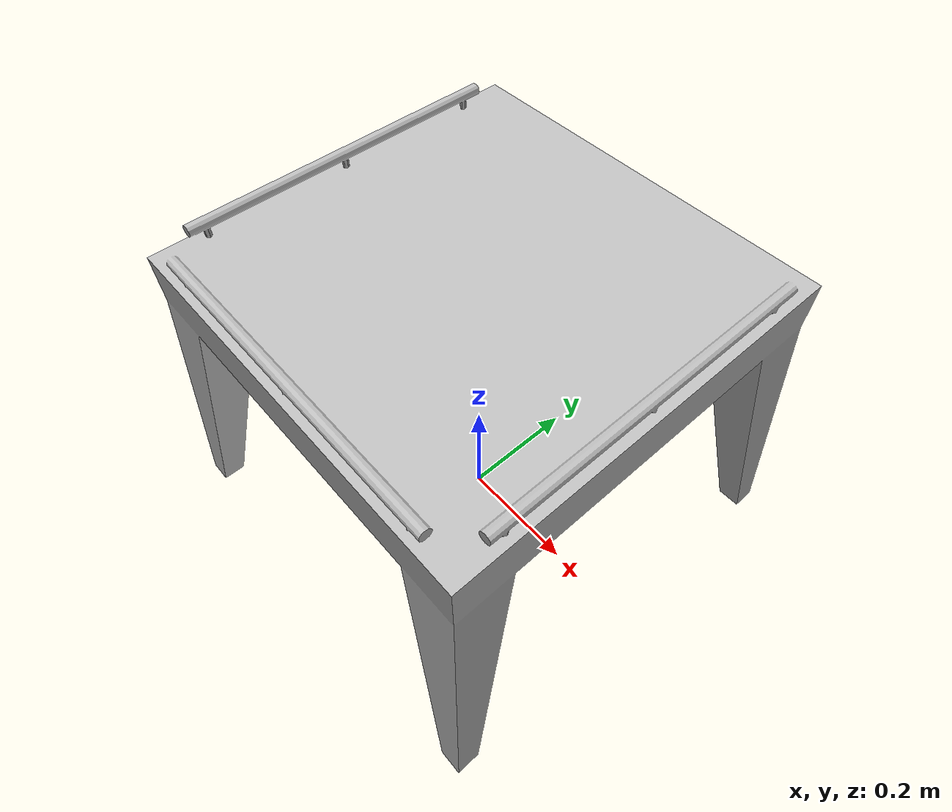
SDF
<?xml version='1.0'?>
<sdf version="1.3">

  <model name="Table">
    <pose> 0.0 0.0 0.0  0.0 0.0 0.0 </pose>
    <static>true</static>

    <link name="rotor">

      <visual name="visual">
        <geometry>
          <mesh><uri>model://Table/meshes/table.dae</uri><scale>1.0 1.0 1.0</scale></mesh>
        </geometry>
        <material>
          <emissive> 1 1 1 1 </emissive>
        </material>
      </visual>

      <collision name="collision">
        <geometry>
          <mesh><uri>model://Table/meshes/table.dae</uri><scale>1.0 1.0 1.0</scale></mesh>
        </geometry>
      </collision>

    </link>
  </model>

</sdf>
